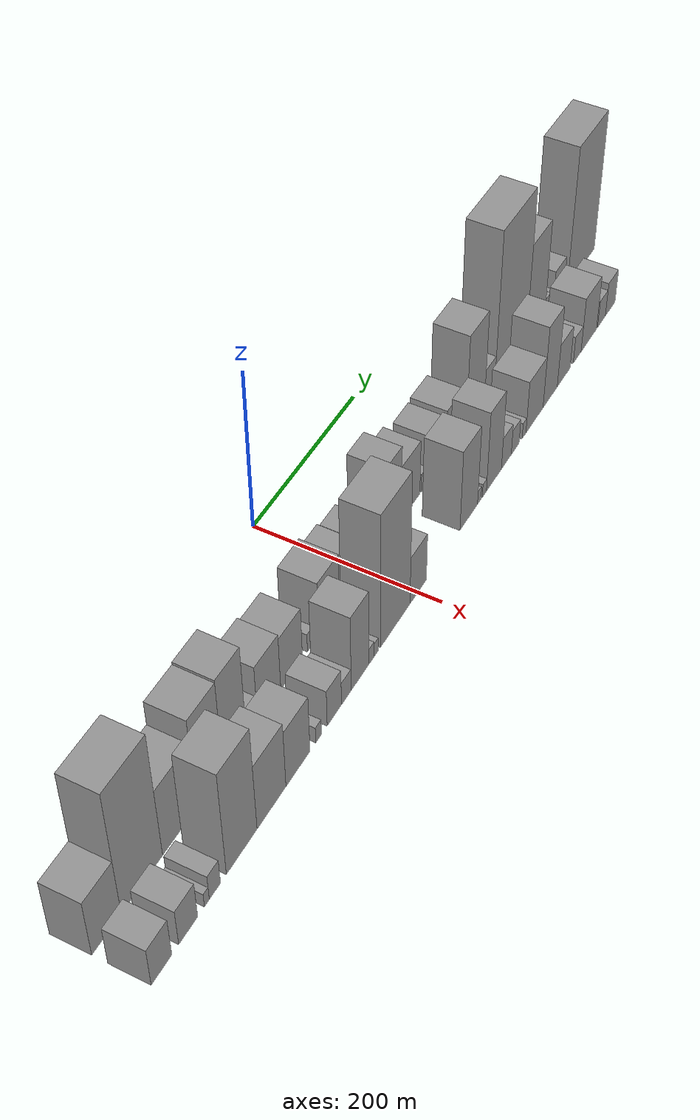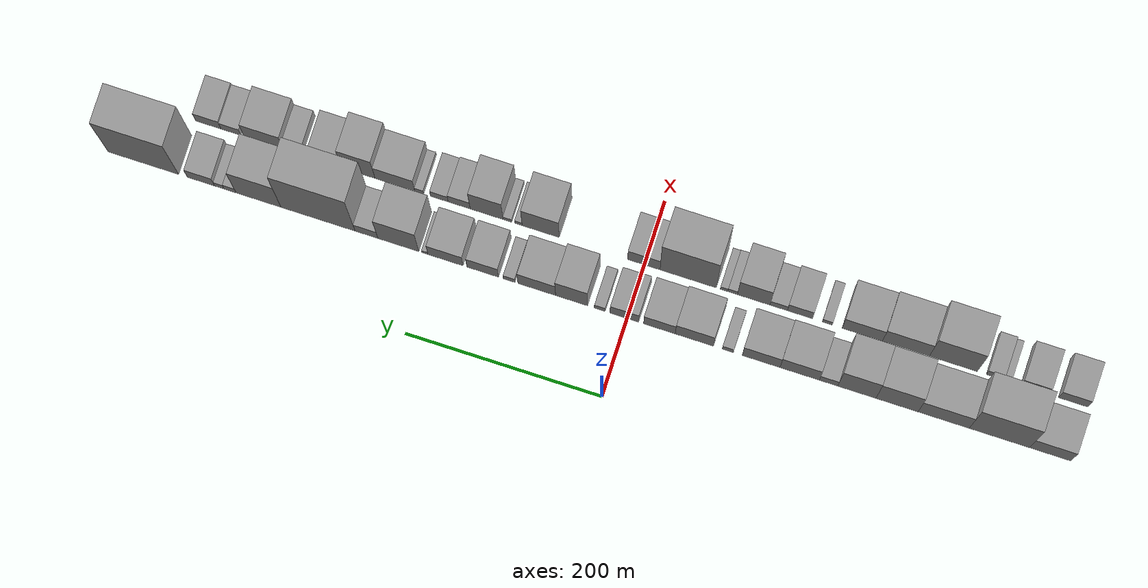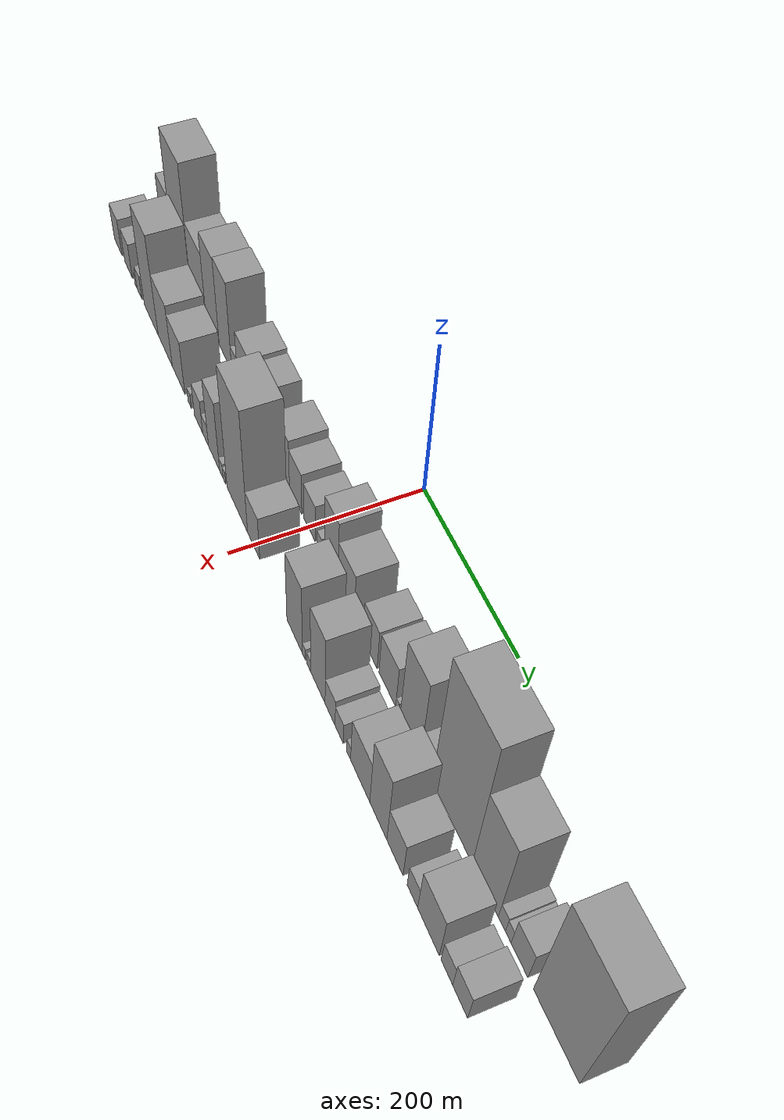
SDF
<sdf version="1.6">
 <world name="default">
  <scene>
   <sky><clouds><speed>12</speed></clouds></sky>
   <ambient>0.4 0.4 0.4 1</ambient>
   <background>0.7 0.7 0.7 1</background>
   <shadows>1</shadows>
  </scene>
  <gravity>0 0 -9.8066</gravity>
  <magnetic_field>6e-06 2.3e-05 -4.2e-05</magnetic_field>
  <physics default="0" name="default_physics" type="ode">
   <ode>
    <solver>
     <type>quick</type>
     <iters>10</iters>
     <sor>1.0</sor>
     <use_dynamic_moi_rescaling>0</use_dynamic_moi_rescaling>
    </solver>
    <constraints>
     <cfm>0</cfm>
     <erp>0.2</erp>
     <contact_max_correcting_vel>100</contact_max_correcting_vel>
     <contact_surface_layer>0.001</contact_surface_layer>
    </constraints>
   </ode>
   <max_step_size>0.004</max_step_size>
   <real_time_factor>1</real_time_factor>
   <real_time_update_rate>250</real_time_update_rate>
  </physics>
  <light name="sun" type="directional">
   <pose>0 0 10 0 0 0</pose>
   <diffuse>0.8 0.8 0.8 1</diffuse>
   <specular>0.2 0.2 0.2 1</specular>
   <attenuation>
    <range>1000</range>
    <constant>0.9</constant>
    <linear>0.01</linear>
    <quadratic>0.001</quadratic>
   </attenuation>
   <direction>-0.5 0.1 -0.9</direction>
  </light>
  <model name="building_1">
   <static>1</static>
   <pose>100.0000 -429.1775 0 0.000000 0.000000 0.000000</pose>
   <link name="link">
    <pose>0 0 37.50 0 0 0</pose>
    <collision name="collision"><geometry><box><size>40.0000 41.6450 75.0000</size></box></geometry></collision>
    <visual name="visual">
     <cast_shadows>0</cast_shadows>
     <geometry><box><size>40.0000 41.6450 75.0000</size></box></geometry>
     <material>
      <script>
       <uri>model://grey_wall/materials/scripts</uri>
       <uri>model://grey_wall/materials/textures</uri>
       <name>vrc/grey_wall</name>
      </script>
     </material>
    </visual>
   </link>
  </model>
  <model name="building_2">
   <static>1</static>
   <pose>100.0000 -377.7919 0 0.000000 0.000000 0.000000</pose>
   <link name="link">
    <pose>0 0 82.50 0 0 0</pose>
    <collision name="collision"><geometry><box><size>40.0000 61.1263 165.0000</size></box></geometry></collision>
    <visual name="visual">
     <cast_shadows>0</cast_shadows>
     <geometry><box><size>40.0000 61.1263 165.0000</size></box></geometry>
     <material>
      <script>
       <uri>model://grey_wall/materials/scripts</uri>
       <uri>model://grey_wall/materials/textures</uri>
       <name>vrc/grey_wall</name>
      </script>
     </material>
    </visual>
   </link>
  </model>
  <model name="building_3">
   <static>1</static>
   <pose>100.0000 -321.2377 0 0.000000 0.000000 0.000000</pose>
   <link name="link">
    <pose>0 0 45.00 0 0 0</pose>
    <collision name="collision"><geometry><box><size>40.0000 51.9820 90.0000</size></box></geometry></collision>
    <visual name="visual">
     <cast_shadows>0</cast_shadows>
     <geometry><box><size>40.0000 51.9820 90.0000</size></box></geometry>
     <material>
      <script>
       <uri>model://grey_wall/materials/scripts</uri>
       <uri>model://grey_wall/materials/textures</uri>
       <name>vrc/grey_wall</name>
      </script>
     </material>
    </visual>
   </link>
  </model>
  <model name="building_4">
   <static>1</static>
   <pose>100.0000 -273.9219 0 0.000000 0.000000 0.000000</pose>
   <link name="link">
    <pose>0 0 60.00 0 0 0</pose>
    <collision name="collision"><geometry><box><size>40.0000 42.6497 120.0000</size></box></geometry></collision>
    <visual name="visual">
     <cast_shadows>0</cast_shadows>
     <geometry><box><size>40.0000 42.6497 120.0000</size></box></geometry>
     <material>
      <script>
       <uri>model://grey_wall/materials/scripts</uri>
       <uri>model://grey_wall/materials/textures</uri>
       <name>vrc/grey_wall</name>
      </script>
     </material>
    </visual>
   </link>
  </model>
  <model name="building_5">
   <static>1</static>
   <pose>100.0000 -233.2874 0 0.000000 0.000000 0.000000</pose>
   <link name="link">
    <pose>0 0 61.50 0 0 0</pose>
    <collision name="collision"><geometry><box><size>40.0000 38.6192 123.0000</size></box></geometry></collision>
    <visual name="visual">
     <cast_shadows>0</cast_shadows>
     <geometry><box><size>40.0000 38.6192 123.0000</size></box></geometry>
     <material>
      <script>
       <uri>model://grey_wall/materials/scripts</uri>
       <uri>model://grey_wall/materials/textures</uri>
       <name>vrc/grey_wall</name>
      </script>
     </material>
    </visual>
   </link>
  </model>
  <model name="building_6">
   <static>1</static>
   <pose>100.0000 -204.5902 0 0.000000 0.000000 0.000000</pose>
   <link name="link">
    <pose>0 0 18.00 0 0 0</pose>
    <collision name="collision"><geometry><box><size>40.0000 18.7752 36.0000</size></box></geometry></collision>
    <visual name="visual">
     <cast_shadows>0</cast_shadows>
     <geometry><box><size>40.0000 18.7752 36.0000</size></box></geometry>
     <material>
      <script>
       <uri>model://grey_wall/materials/scripts</uri>
       <uri>model://grey_wall/materials/textures</uri>
       <name>vrc/grey_wall</name>
      </script>
     </material>
    </visual>
   </link>
  </model>
  <model name="building_7">
   <static>1</static>
   <pose>100.0000 -175.2416 0 0.000000 0.000000 0.000000</pose>
   <link name="link">
    <pose>0 0 37.50 0 0 0</pose>
    <collision name="collision"><geometry><box><size>40.0000 39.9220 75.0000</size></box></geometry></collision>
    <visual name="visual">
     <cast_shadows>0</cast_shadows>
     <geometry><box><size>40.0000 39.9220 75.0000</size></box></geometry>
     <material>
      <script>
       <uri>model://grey_wall/materials/scripts</uri>
       <uri>model://grey_wall/materials/textures</uri>
       <name>vrc/grey_wall</name>
      </script>
     </material>
    </visual>
   </link>
  </model>
  <model name="building_8">
   <static>1</static>
   <pose>100.0000 -136.1130 0 0.000000 0.000000 0.000000</pose>
   <link name="link">
    <pose>0 0 34.50 0 0 0</pose>
    <collision name="collision"><geometry><box><size>40.0000 38.3351 69.0000</size></box></geometry></collision>
    <visual name="visual">
     <cast_shadows>0</cast_shadows>
     <geometry><box><size>40.0000 38.3351 69.0000</size></box></geometry>
     <material>
      <script>
       <uri>model://grey_wall/materials/scripts</uri>
       <uri>model://grey_wall/materials/textures</uri>
       <name>vrc/grey_wall</name>
      </script>
     </material>
    </visual>
   </link>
  </model>
  <model name="building_9">
   <static>1</static>
   <pose>100.0000 -102.2972 0 0.000000 0.000000 0.000000</pose>
   <link name="link">
    <pose>0 0 12.00 0 0 0</pose>
    <collision name="collision"><geometry><box><size>40.0000 11.2966 24.0000</size></box></geometry></collision>
    <visual name="visual">
     <cast_shadows>0</cast_shadows>
     <geometry><box><size>40.0000 11.2966 24.0000</size></box></geometry>
     <material>
      <script>
       <uri>model://grey_wall/materials/scripts</uri>
       <uri>model://grey_wall/materials/textures</uri>
       <name>vrc/grey_wall</name>
      </script>
     </material>
    </visual>
   </link>
  </model>
  <model name="building_10">
   <static>1</static>
   <pose>100.0000 -68.2635 0 0.000000 0.000000 0.000000</pose>
   <link name="link">
    <pose>0 0 36.00 0 0 0</pose>
    <collision name="collision"><geometry><box><size>40.0000 38.7707 72.0000</size></box></geometry></collision>
    <visual name="visual">
     <cast_shadows>0</cast_shadows>
     <geometry><box><size>40.0000 38.7707 72.0000</size></box></geometry>
     <material>
      <script>
       <uri>model://grey_wall/materials/scripts</uri>
       <uri>model://grey_wall/materials/textures</uri>
       <name>vrc/grey_wall</name>
      </script>
     </material>
    </visual>
   </link>
  </model>
  <model name="building_11">
   <static>1</static>
   <pose>100.0000 -32.7618 0 0.000000 0.000000 0.000000</pose>
   <link name="link">
    <pose>0 0 30.00 0 0 0</pose>
    <collision name="collision"><geometry><box><size>40.0000 32.2326 60.0000</size></box></geometry></collision>
    <visual name="visual">
     <cast_shadows>0</cast_shadows>
     <geometry><box><size>40.0000 32.2326 60.0000</size></box></geometry>
     <material>
      <script>
       <uri>model://grey_wall/materials/scripts</uri>
       <uri>model://grey_wall/materials/textures</uri>
       <name>vrc/grey_wall</name>
      </script>
     </material>
    </visual>
   </link>
  </model>
  <model name="building_12">
   <static>1</static>
   <pose>100.0000 2.8910 0 0.000000 0.000000 0.000000</pose>
   <link name="link">
    <pose>0 0 27.00 0 0 0</pose>
    <collision name="collision"><geometry><box><size>40.0000 29.0729 54.0000</size></box></geometry></collision>
    <visual name="visual">
     <cast_shadows>0</cast_shadows>
     <geometry><box><size>40.0000 29.0729 54.0000</size></box></geometry>
     <material>
      <script>
       <uri>model://grey_wall/materials/scripts</uri>
       <uri>model://grey_wall/materials/textures</uri>
       <name>vrc/grey_wall</name>
      </script>
     </material>
    </visual>
   </link>
  </model>
  <model name="building_13">
   <static>1</static>
   <pose>100.0000 27.9162 0 0.000000 0.000000 0.000000</pose>
   <link name="link">
    <pose>0 0 12.00 0 0 0</pose>
    <collision name="collision"><geometry><box><size>40.0000 10.9775 24.0000</size></box></geometry></collision>
    <visual name="visual">
     <cast_shadows>0</cast_shadows>
     <geometry><box><size>40.0000 10.9775 24.0000</size></box></geometry>
     <material>
      <script>
       <uri>model://grey_wall/materials/scripts</uri>
       <uri>model://grey_wall/materials/textures</uri>
       <name>vrc/grey_wall</name>
      </script>
     </material>
    </visual>
   </link>
  </model>
  <model name="building_14">
   <static>1</static>
   <pose>100.0000 56.6942 0 0.000000 0.000000 0.000000</pose>
   <link name="link">
    <pose>0 0 49.50 0 0 0</pose>
    <collision name="collision"><geometry><box><size>40.0000 32.5785 99.0000</size></box></geometry></collision>
    <visual name="visual">
     <cast_shadows>0</cast_shadows>
     <geometry><box><size>40.0000 32.5785 99.0000</size></box></geometry>
     <material>
      <script>
       <uri>model://grey_wall/materials/scripts</uri>
       <uri>model://grey_wall/materials/textures</uri>
       <name>vrc/grey_wall</name>
      </script>
     </material>
    </visual>
   </link>
  </model>
  <model name="building_15">
   <static>1</static>
   <pose>100.0000 92.1852 0 0.000000 0.000000 0.000000</pose>
   <link name="link">
    <pose>0 0 36.00 0 0 0</pose>
    <collision name="collision"><geometry><box><size>40.0000 38.4035 72.0000</size></box></geometry></collision>
    <visual name="visual">
     <cast_shadows>0</cast_shadows>
     <geometry><box><size>40.0000 38.4035 72.0000</size></box></geometry>
     <material>
      <script>
       <uri>model://grey_wall/materials/scripts</uri>
       <uri>model://grey_wall/materials/textures</uri>
       <name>vrc/grey_wall</name>
      </script>
     </material>
    </visual>
   </link>
  </model>
  <model name="building_16">
   <static>1</static>
   <pose>100.0000 120.2889 0 0.000000 0.000000 0.000000</pose>
   <link name="link">
    <pose>0 0 12.00 0 0 0</pose>
    <collision name="collision"><geometry><box><size>40.0000 11.8039 24.0000</size></box></geometry></collision>
    <visual name="visual">
     <cast_shadows>0</cast_shadows>
     <geometry><box><size>40.0000 11.8039 24.0000</size></box></geometry>
     <material>
      <script>
       <uri>model://grey_wall/materials/scripts</uri>
       <uri>model://grey_wall/materials/textures</uri>
       <name>vrc/grey_wall</name>
      </script>
     </material>
    </visual>
   </link>
  </model>
  <model name="building_17">
   <static>1</static>
   <pose>100.0000 147.2270 0 0.000000 0.000000 0.000000</pose>
   <link name="link">
    <pose>0 0 30.00 0 0 0</pose>
    <collision name="collision"><geometry><box><size>40.0000 32.0724 60.0000</size></box></geometry></collision>
    <visual name="visual">
     <cast_shadows>0</cast_shadows>
     <geometry><box><size>40.0000 32.0724 60.0000</size></box></geometry>
     <material>
      <script>
       <uri>model://grey_wall/materials/scripts</uri>
       <uri>model://grey_wall/materials/textures</uri>
       <name>vrc/grey_wall</name>
      </script>
     </material>
    </visual>
   </link>
  </model>
  <model name="building_18">
   <static>1</static>
   <pose>100.0000 185.1688 0 0.000000 0.000000 0.000000</pose>
   <link name="link">
    <pose>0 0 31.50 0 0 0</pose>
    <collision name="collision"><geometry><box><size>40.0000 35.8112 63.0000</size></box></geometry></collision>
    <visual name="visual">
     <cast_shadows>0</cast_shadows>
     <geometry><box><size>40.0000 35.8112 63.0000</size></box></geometry>
     <material>
      <script>
       <uri>model://grey_wall/materials/scripts</uri>
       <uri>model://grey_wall/materials/textures</uri>
       <name>vrc/grey_wall</name>
      </script>
     </material>
    </visual>
   </link>
  </model>
  <model name="building_19">
   <static>1</static>
   <pose>100.0000 206.2844 0 0.000000 0.000000 0.000000</pose>
   <link name="link">
    <pose>0 0 7.50 0 0 0</pose>
    <collision name="collision"><geometry><box><size>40.0000 6.4200 15.0000</size></box></geometry></collision>
    <visual name="visual">
     <cast_shadows>0</cast_shadows>
     <geometry><box><size>40.0000 6.4200 15.0000</size></box></geometry>
     <material>
      <script>
       <uri>model://grey_wall/materials/scripts</uri>
       <uri>model://grey_wall/materials/textures</uri>
       <name>vrc/grey_wall</name>
      </script>
     </material>
    </visual>
   </link>
  </model>
  <model name="building_20">
   <static>1</static>
   <pose>100.0000 233.3649 0 0.000000 0.000000 0.000000</pose>
   <link name="link">
    <pose>0 0 61.50 0 0 0</pose>
    <collision name="collision"><geometry><box><size>40.0000 41.7410 123.0000</size></box></geometry></collision>
    <visual name="visual">
     <cast_shadows>0</cast_shadows>
     <geometry><box><size>40.0000 41.7410 123.0000</size></box></geometry>
     <material>
      <script>
       <uri>model://grey_wall/materials/scripts</uri>
       <uri>model://grey_wall/materials/textures</uri>
       <name>vrc/grey_wall</name>
      </script>
     </material>
    </visual>
   </link>
  </model>
  <model name="building_21">
   <static>1</static>
   <pose>100.0000 265.9006 0 0.000000 0.000000 0.000000</pose>
   <link name="link">
    <pose>0 0 22.50 0 0 0</pose>
    <collision name="collision"><geometry><box><size>40.0000 23.3303 45.0000</size></box></geometry></collision>
    <visual name="visual">
     <cast_shadows>0</cast_shadows>
     <geometry><box><size>40.0000 23.3303 45.0000</size></box></geometry>
     <material>
      <script>
       <uri>model://grey_wall/materials/scripts</uri>
       <uri>model://grey_wall/materials/textures</uri>
       <name>vrc/grey_wall</name>
      </script>
     </material>
    </visual>
   </link>
  </model>
  <model name="building_22">
   <static>1</static>
   <pose>100.0000 315.4582 0 0.000000 0.000000 0.000000</pose>
   <link name="link">
    <pose>0 0 102.00 0 0 0</pose>
    <collision name="collision"><geometry><box><size>40.0000 75.7849 204.0000</size></box></geometry></collision>
    <visual name="visual">
     <cast_shadows>0</cast_shadows>
     <geometry><box><size>40.0000 75.7849 204.0000</size></box></geometry>
     <material>
      <script>
       <uri>model://grey_wall/materials/scripts</uri>
       <uri>model://grey_wall/materials/textures</uri>
       <name>vrc/grey_wall</name>
      </script>
     </material>
    </visual>
   </link>
  </model>
  <model name="building_23">
   <static>1</static>
   <pose>100.0000 376.3671 0 0.000000 0.000000 0.000000</pose>
   <link name="link">
    <pose>0 0 66.00 0 0 0</pose>
    <collision name="collision"><geometry><box><size>40.0000 46.0330 132.0000</size></box></geometry></collision>
    <visual name="visual">
     <cast_shadows>0</cast_shadows>
     <geometry><box><size>40.0000 46.0330 132.0000</size></box></geometry>
     <material>
      <script>
       <uri>model://grey_wall/materials/scripts</uri>
       <uri>model://grey_wall/materials/textures</uri>
       <name>vrc/grey_wall</name>
      </script>
     </material>
    </visual>
   </link>
  </model>
  <model name="building_24">
   <static>1</static>
   <pose>100.0000 405.5553 0 0.000000 0.000000 0.000000</pose>
   <link name="link">
    <pose>0 0 13.50 0 0 0</pose>
    <collision name="collision"><geometry><box><size>40.0000 12.3434 27.0000</size></box></geometry></collision>
    <visual name="visual">
     <cast_shadows>0</cast_shadows>
     <geometry><box><size>40.0000 12.3434 27.0000</size></box></geometry>
     <material>
      <script>
       <uri>model://grey_wall/materials/scripts</uri>
       <uri>model://grey_wall/materials/textures</uri>
       <name>vrc/grey_wall</name>
      </script>
     </material>
    </visual>
   </link>
  </model>
  <model name="building_25">
   <static>1</static>
   <pose>100.0000 416.5286 0 0.000000 0.000000 0.000000</pose>
   <link name="link">
    <pose>0 0 12.00 0 0 0</pose>
    <collision name="collision"><geometry><box><size>40.0000 9.6032 24.0000</size></box></geometry></collision>
    <visual name="visual">
     <cast_shadows>0</cast_shadows>
     <geometry><box><size>40.0000 9.6032 24.0000</size></box></geometry>
     <material>
      <script>
       <uri>model://grey_wall/materials/scripts</uri>
       <uri>model://grey_wall/materials/textures</uri>
       <name>vrc/grey_wall</name>
      </script>
     </material>
    </visual>
   </link>
  </model>
  <model name="building_26">
   <static>1</static>
   <pose>100.0000 435.3020 0 0.000000 0.000000 0.000000</pose>
   <link name="link">
    <pose>0 0 24.00 0 0 0</pose>
    <collision name="collision"><geometry><box><size>40.0000 27.9434 48.0000</size></box></geometry></collision>
    <visual name="visual">
     <cast_shadows>0</cast_shadows>
     <geometry><box><size>40.0000 27.9434 48.0000</size></box></geometry>
     <material>
      <script>
       <uri>model://grey_wall/materials/scripts</uri>
       <uri>model://grey_wall/materials/textures</uri>
       <name>vrc/grey_wall</name>
      </script>
     </material>
    </visual>
   </link>
  </model>
  <model name="building_27">
   <static>1</static>
   <pose>100.0000 494.3336 0 0.000000 0.000000 0.000000</pose>
   <link name="link">
    <pose>0 0 91.50 0 0 0</pose>
    <collision name="collision"><geometry><box><size>40.0000 72.1199 183.0000</size></box></geometry></collision>
    <visual name="visual">
     <cast_shadows>0</cast_shadows>
     <geometry><box><size>40.0000 72.1199 183.0000</size></box></geometry>
     <material>
      <script>
       <uri>model://grey_wall/materials/scripts</uri>
       <uri>model://grey_wall/materials/textures</uri>
       <name>vrc/grey_wall</name>
      </script>
     </material>
    </visual>
   </link>
  </model>
  <model name="building_28">
   <static>1</static>
   <pose>155.0000 -435.1571 0 0.000000 0.000000 0.000000</pose>
   <link name="link">
    <pose>0 0 25.50 0 0 0</pose>
    <collision name="collision"><geometry><box><size>40.0000 29.6859 51.0000</size></box></geometry></collision>
    <visual name="visual">
     <cast_shadows>0</cast_shadows>
     <geometry><box><size>40.0000 29.6859 51.0000</size></box></geometry>
     <material>
      <script>
       <uri>model://grey_wall/materials/scripts</uri>
       <uri>model://grey_wall/materials/textures</uri>
       <name>vrc/grey_wall</name>
      </script>
     </material>
    </visual>
   </link>
  </model>
  <model name="building_29">
   <static>1</static>
   <pose>155.0000 -396.1464 0 0.000000 0.000000 0.000000</pose>
   <link name="link">
    <pose>0 0 24.00 0 0 0</pose>
    <collision name="collision"><geometry><box><size>40.0000 28.3355 48.0000</size></box></geometry></collision>
    <visual name="visual">
     <cast_shadows>0</cast_shadows>
     <geometry><box><size>40.0000 28.3355 48.0000</size></box></geometry>
     <material>
      <script>
       <uri>model://grey_wall/materials/scripts</uri>
       <uri>model://grey_wall/materials/textures</uri>
       <name>vrc/grey_wall</name>
      </script>
     </material>
    </visual>
   </link>
  </model>
  <model name="building_30">
   <static>1</static>
   <pose>155.0000 -368.2110 0 0.000000 0.000000 0.000000</pose>
   <link name="link">
    <pose>0 0 9.00 0 0 0</pose>
    <collision name="collision"><geometry><box><size>40.0000 7.5354 18.0000</size></box></geometry></collision>
    <visual name="visual">
     <cast_shadows>0</cast_shadows>
     <geometry><box><size>40.0000 7.5354 18.0000</size></box></geometry>
     <material>
      <script>
       <uri>model://grey_wall/materials/scripts</uri>
       <uri>model://grey_wall/materials/textures</uri>
       <name>vrc/grey_wall</name>
      </script>
     </material>
    </visual>
   </link>
  </model>
  <model name="building_31">
   <static>1</static>
   <pose>155.0000 -355.8351 0 0.000000 0.000000 0.000000</pose>
   <link name="link">
    <pose>0 0 16.50 0 0 0</pose>
    <collision name="collision"><geometry><box><size>40.0000 17.2164 33.0000</size></box></geometry></collision>
    <visual name="visual">
     <cast_shadows>0</cast_shadows>
     <geometry><box><size>40.0000 17.2164 33.0000</size></box></geometry>
     <material>
      <script>
       <uri>model://grey_wall/materials/scripts</uri>
       <uri>model://grey_wall/materials/textures</uri>
       <name>vrc/grey_wall</name>
      </script>
     </material>
    </visual>
   </link>
  </model>
  <model name="building_32">
   <static>1</static>
   <pose>155.0000 -313.8597 0 0.000000 0.000000 0.000000</pose>
   <link name="link">
    <pose>0 0 69.00 0 0 0</pose>
    <collision name="collision"><geometry><box><size>40.0000 48.7344 138.0000</size></box></geometry></collision>
    <visual name="visual">
     <cast_shadows>0</cast_shadows>
     <geometry><box><size>40.0000 48.7344 138.0000</size></box></geometry>
     <material>
      <script>
       <uri>model://grey_wall/materials/scripts</uri>
       <uri>model://grey_wall/materials/textures</uri>
       <name>vrc/grey_wall</name>
      </script>
     </material>
    </visual>
   </link>
  </model>
  <model name="building_33">
   <static>1</static>
   <pose>155.0000 -265.6903 0 0.000000 0.000000 0.000000</pose>
   <link name="link">
    <pose>0 0 43.50 0 0 0</pose>
    <collision name="collision"><geometry><box><size>40.0000 47.6045 87.0000</size></box></geometry></collision>
    <visual name="visual">
     <cast_shadows>0</cast_shadows>
     <geometry><box><size>40.0000 47.6045 87.0000</size></box></geometry>
     <material>
      <script>
       <uri>model://grey_wall/materials/scripts</uri>
       <uri>model://grey_wall/materials/textures</uri>
       <name>vrc/grey_wall</name>
      </script>
     </material>
    </visual>
   </link>
  </model>
  <model name="building_34">
   <static>1</static>
   <pose>155.0000 -221.3886 0 0.000000 0.000000 0.000000</pose>
   <link name="link">
    <pose>0 0 37.50 0 0 0</pose>
    <collision name="collision"><geometry><box><size>40.0000 40.9990 75.0000</size></box></geometry></collision>
    <visual name="visual">
     <cast_shadows>0</cast_shadows>
     <geometry><box><size>40.0000 40.9990 75.0000</size></box></geometry>
     <material>
      <script>
       <uri>model://grey_wall/materials/scripts</uri>
       <uri>model://grey_wall/materials/textures</uri>
       <name>vrc/grey_wall</name>
      </script>
     </material>
    </visual>
   </link>
  </model>
  <model name="building_35">
   <static>1</static>
   <pose>155.0000 -185.8597 0 0.000000 0.000000 0.000000</pose>
   <link name="link">
    <pose>0 0 10.50 0 0 0</pose>
    <collision name="collision"><geometry><box><size>40.0000 10.0588 21.0000</size></box></geometry></collision>
    <visual name="visual">
     <cast_shadows>0</cast_shadows>
     <geometry><box><size>40.0000 10.0588 21.0000</size></box></geometry>
     <material>
      <script>
       <uri>model://grey_wall/materials/scripts</uri>
       <uri>model://grey_wall/materials/textures</uri>
       <name>vrc/grey_wall</name>
      </script>
     </material>
    </visual>
   </link>
  </model>
  <model name="building_36">
   <static>1</static>
   <pose>155.0000 -158.0476 0 0.000000 0.000000 0.000000</pose>
   <link name="link">
    <pose>0 0 24.00 0 0 0</pose>
    <collision name="collision"><geometry><box><size>40.0000 25.5654 48.0000</size></box></geometry></collision>
    <visual name="visual">
     <cast_shadows>0</cast_shadows>
     <geometry><box><size>40.0000 25.5654 48.0000</size></box></geometry>
     <material>
      <script>
       <uri>model://grey_wall/materials/scripts</uri>
       <uri>model://grey_wall/materials/textures</uri>
       <name>vrc/grey_wall</name>
      </script>
     </material>
    </visual>
   </link>
  </model>
  <model name="building_37">
   <static>1</static>
   <pose>155.0000 -136.4283 0 0.000000 0.000000 0.000000</pose>
   <link name="link">
    <pose>0 0 15.00 0 0 0</pose>
    <collision name="collision"><geometry><box><size>40.0000 17.6733 30.0000</size></box></geometry></collision>
    <visual name="visual">
     <cast_shadows>0</cast_shadows>
     <geometry><box><size>40.0000 17.6733 30.0000</size></box></geometry>
     <material>
      <script>
       <uri>model://grey_wall/materials/scripts</uri>
       <uri>model://grey_wall/materials/textures</uri>
       <name>vrc/grey_wall</name>
      </script>
     </material>
    </visual>
   </link>
  </model>
  <model name="building_38">
   <static>1</static>
   <pose>155.0000 -111.0777 0 0.000000 0.000000 0.000000</pose>
   <link name="link">
    <pose>0 0 49.50 0 0 0</pose>
    <collision name="collision"><geometry><box><size>40.0000 33.0277 99.0000</size></box></geometry></collision>
    <visual name="visual">
     <cast_shadows>0</cast_shadows>
     <geometry><box><size>40.0000 33.0277 99.0000</size></box></geometry>
     <material>
      <script>
       <uri>model://grey_wall/materials/scripts</uri>
       <uri>model://grey_wall/materials/textures</uri>
       <name>vrc/grey_wall</name>
      </script>
     </material>
    </visual>
   </link>
  </model>
  <model name="building_39">
   <static>1</static>
   <pose>155.0000 -89.6882 0 0.000000 0.000000 0.000000</pose>
   <link name="link">
    <pose>0 0 10.50 0 0 0</pose>
    <collision name="collision"><geometry><box><size>40.0000 9.7514 21.0000</size></box></geometry></collision>
    <visual name="visual">
     <cast_shadows>0</cast_shadows>
     <geometry><box><size>40.0000 9.7514 21.0000</size></box></geometry>
     <material>
      <script>
       <uri>model://grey_wall/materials/scripts</uri>
       <uri>model://grey_wall/materials/textures</uri>
       <name>vrc/grey_wall</name>
      </script>
     </material>
    </visual>
   </link>
  </model>
  <model name="building_40">
   <static>1</static>
   <pose>155.0000 -80.9170 0 0.000000 0.000000 0.000000</pose>
   <link name="link">
    <pose>0 0 9.00 0 0 0</pose>
    <collision name="collision"><geometry><box><size>40.0000 7.7910 18.0000</size></box></geometry></collision>
    <visual name="visual">
     <cast_shadows>0</cast_shadows>
     <geometry><box><size>40.0000 7.7910 18.0000</size></box></geometry>
     <material>
      <script>
       <uri>model://grey_wall/materials/scripts</uri>
       <uri>model://grey_wall/materials/textures</uri>
       <name>vrc/grey_wall</name>
      </script>
     </material>
    </visual>
   </link>
  </model>
  <model name="building_41">
   <static>1</static>
   <pose>155.0000 -44.3341 0 0.000000 0.000000 0.000000</pose>
   <link name="link">
    <pose>0 0 87.00 0 0 0</pose>
    <collision name="collision"><geometry><box><size>40.0000 57.3748 174.0000</size></box></geometry></collision>
    <visual name="visual">
     <cast_shadows>0</cast_shadows>
     <geometry><box><size>40.0000 57.3748 174.0000</size></box></geometry>
     <material>
      <script>
       <uri>model://grey_wall/materials/scripts</uri>
       <uri>model://grey_wall/materials/textures</uri>
       <name>vrc/grey_wall</name>
      </script>
     </material>
    </visual>
   </link>
  </model>
  <model name="building_42">
   <static>1</static>
   <pose>155.0000 0.7902 0 0.000000 0.000000 0.000000</pose>
   <link name="link">
    <pose>0 0 31.50 0 0 0</pose>
    <collision name="collision"><geometry><box><size>40.0000 32.8739 63.0000</size></box></geometry></collision>
    <visual name="visual">
     <cast_shadows>0</cast_shadows>
     <geometry><box><size>40.0000 32.8739 63.0000</size></box></geometry>
     <material>
      <script>
       <uri>model://grey_wall/materials/scripts</uri>
       <uri>model://grey_wall/materials/textures</uri>
       <name>vrc/grey_wall</name>
      </script>
     </material>
    </visual>
   </link>
  </model>
  <model name="building_43">
   <static>1</static>
   <pose>155.0000 106.0111 0 0.000000 0.000000 0.000000</pose>
   <link name="link">
    <pose>0 0 52.50 0 0 0</pose>
    <collision name="collision"><geometry><box><size>40.0000 37.8560 105.0000</size></box></geometry></collision>
    <visual name="visual">
     <cast_shadows>0</cast_shadows>
     <geometry><box><size>40.0000 37.8560 105.0000</size></box></geometry>
     <material>
      <script>
       <uri>model://grey_wall/materials/scripts</uri>
       <uri>model://grey_wall/materials/textures</uri>
       <name>vrc/grey_wall</name>
      </script>
     </material>
    </visual>
   </link>
  </model>
  <model name="building_44">
   <static>1</static>
   <pose>155.0000 128.7403 0 0.000000 0.000000 0.000000</pose>
   <link name="link">
    <pose>0 0 9.00 0 0 0</pose>
    <collision name="collision"><geometry><box><size>40.0000 7.6025 18.0000</size></box></geometry></collision>
    <visual name="visual">
     <cast_shadows>0</cast_shadows>
     <geometry><box><size>40.0000 7.6025 18.0000</size></box></geometry>
     <material>
      <script>
       <uri>model://grey_wall/materials/scripts</uri>
       <uri>model://grey_wall/materials/textures</uri>
       <name>vrc/grey_wall</name>
      </script>
     </material>
    </visual>
   </link>
  </model>
  <model name="building_45">
   <static>1</static>
   <pose>155.0000 140.0113 0 0.000000 0.000000 0.000000</pose>
   <link name="link">
    <pose>0 0 9.00 0 0 0</pose>
    <collision name="collision"><geometry><box><size>40.0000 8.9395 18.0000</size></box></geometry></collision>
    <visual name="visual">
     <cast_shadows>0</cast_shadows>
     <geometry><box><size>40.0000 8.9395 18.0000</size></box></geometry>
     <material>
      <script>
       <uri>model://grey_wall/materials/scripts</uri>
       <uri>model://grey_wall/materials/textures</uri>
       <name>vrc/grey_wall</name>
      </script>
     </material>
    </visual>
   </link>
  </model>
  <model name="building_46">
   <static>1</static>
   <pose>155.0000 161.2486 0 0.000000 0.000000 0.000000</pose>
   <link name="link">
    <pose>0 0 52.50 0 0 0</pose>
    <collision name="collision"><geometry><box><size>40.0000 33.5350 105.0000</size></box></geometry></collision>
    <visual name="visual">
     <cast_shadows>0</cast_shadows>
     <geometry><box><size>40.0000 33.5350 105.0000</size></box></geometry>
     <material>
      <script>
       <uri>model://grey_wall/materials/scripts</uri>
       <uri>model://grey_wall/materials/textures</uri>
       <name>vrc/grey_wall</name>
      </script>
     </material>
    </visual>
   </link>
  </model>
  <model name="building_47">
   <static>1</static>
   <pose>155.0000 189.2490 0 0.000000 0.000000 0.000000</pose>
   <link name="link">
    <pose>0 0 21.00 0 0 0</pose>
    <collision name="collision"><geometry><box><size>40.0000 22.4658 42.0000</size></box></geometry></collision>
    <visual name="visual">
     <cast_shadows>0</cast_shadows>
     <geometry><box><size>40.0000 22.4658 42.0000</size></box></geometry>
     <material>
      <script>
       <uri>model://grey_wall/materials/scripts</uri>
       <uri>model://grey_wall/materials/textures</uri>
       <name>vrc/grey_wall</name>
      </script>
     </material>
    </visual>
   </link>
  </model>
  <model name="building_48">
   <static>1</static>
   <pose>155.0000 209.5497 0 0.000000 0.000000 0.000000</pose>
   <link name="link">
    <pose>0 0 16.50 0 0 0</pose>
    <collision name="collision"><geometry><box><size>40.0000 18.1357 33.0000</size></box></geometry></collision>
    <visual name="visual">
     <cast_shadows>0</cast_shadows>
     <geometry><box><size>40.0000 18.1357 33.0000</size></box></geometry>
     <material>
      <script>
       <uri>model://grey_wall/materials/scripts</uri>
       <uri>model://grey_wall/materials/textures</uri>
       <name>vrc/grey_wall</name>
      </script>
     </material>
    </visual>
   </link>
  </model>
  <model name="building_49">
   <static>1</static>
   <pose>155.0000 230.1292 0 0.000000 0.000000 0.000000</pose>
   <link name="link">
    <pose>0 0 10.50 0 0 0</pose>
    <collision name="collision"><geometry><box><size>40.0000 9.0232 21.0000</size></box></geometry></collision>
    <visual name="visual">
     <cast_shadows>0</cast_shadows>
     <geometry><box><size>40.0000 9.0232 21.0000</size></box></geometry>
     <material>
      <script>
       <uri>model://grey_wall/materials/scripts</uri>
       <uri>model://grey_wall/materials/textures</uri>
       <name>vrc/grey_wall</name>
      </script>
     </material>
    </visual>
   </link>
  </model>
  <model name="building_50">
   <static>1</static>
   <pose>155.0000 254.9763 0 0.000000 0.000000 0.000000</pose>
   <link name="link">
    <pose>0 0 34.50 0 0 0</pose>
    <collision name="collision"><geometry><box><size>40.0000 40.6709 69.0000</size></box></geometry></collision>
    <visual name="visual">
     <cast_shadows>0</cast_shadows>
     <geometry><box><size>40.0000 40.6709 69.0000</size></box></geometry>
     <material>
      <script>
       <uri>model://grey_wall/materials/scripts</uri>
       <uri>model://grey_wall/materials/textures</uri>
       <name>vrc/grey_wall</name>
      </script>
     </material>
    </visual>
   </link>
  </model>
  <model name="building_51">
   <static>1</static>
   <pose>155.0000 292.6564 0 0.000000 0.000000 0.000000</pose>
   <link name="link">
    <pose>0 0 54.00 0 0 0</pose>
    <collision name="collision"><geometry><box><size>40.0000 34.6892 108.0000</size></box></geometry></collision>
    <visual name="visual">
     <cast_shadows>0</cast_shadows>
     <geometry><box><size>40.0000 34.6892 108.0000</size></box></geometry>
     <material>
      <script>
       <uri>model://grey_wall/materials/scripts</uri>
       <uri>model://grey_wall/materials/textures</uri>
       <name>vrc/grey_wall</name>
      </script>
     </material>
    </visual>
   </link>
  </model>
  <model name="building_52">
   <static>1</static>
   <pose>155.0000 325.9232 0 0.000000 0.000000 0.000000</pose>
   <link name="link">
    <pose>0 0 28.50 0 0 0</pose>
    <collision name="collision"><geometry><box><size>40.0000 31.8444 57.0000</size></box></geometry></collision>
    <visual name="visual">
     <cast_shadows>0</cast_shadows>
     <geometry><box><size>40.0000 31.8444 57.0000</size></box></geometry>
     <material>
      <script>
       <uri>model://grey_wall/materials/scripts</uri>
       <uri>model://grey_wall/materials/textures</uri>
       <name>vrc/grey_wall</name>
      </script>
     </material>
    </visual>
   </link>
  </model>
  <model name="building_53">
   <static>1</static>
   <pose>155.0000 359.7807 0 0.000000 0.000000 0.000000</pose>
   <link name="link">
    <pose>0 0 18.00 0 0 0</pose>
    <collision name="collision"><geometry><box><size>40.0000 19.8705 36.0000</size></box></geometry></collision>
    <visual name="visual">
     <cast_shadows>0</cast_shadows>
     <geometry><box><size>40.0000 19.8705 36.0000</size></box></geometry>
     <material>
      <script>
       <uri>model://grey_wall/materials/scripts</uri>
       <uri>model://grey_wall/materials/textures</uri>
       <name>vrc/grey_wall</name>
      </script>
     </material>
    </visual>
   </link>
  </model>
  <model name="building_54">
   <static>1</static>
   <pose>155.0000 389.6644 0 0.000000 0.000000 0.000000</pose>
   <link name="link">
    <pose>0 0 36.00 0 0 0</pose>
    <collision name="collision"><geometry><box><size>40.0000 39.8970 72.0000</size></box></geometry></collision>
    <visual name="visual">
     <cast_shadows>0</cast_shadows>
     <geometry><box><size>40.0000 39.8970 72.0000</size></box></geometry>
     <material>
      <script>
       <uri>model://grey_wall/materials/scripts</uri>
       <uri>model://grey_wall/materials/textures</uri>
       <name>vrc/grey_wall</name>
      </script>
     </material>
    </visual>
   </link>
  </model>
  <model name="building_55">
   <static>1</static>
   <pose>155.0000 422.9212 0 0.000000 0.000000 0.000000</pose>
   <link name="link">
    <pose>0 0 18.00 0 0 0</pose>
    <collision name="collision"><geometry><box><size>40.0000 20.6167 36.0000</size></box></geometry></collision>
    <visual name="visual">
     <cast_shadows>0</cast_shadows>
     <geometry><box><size>40.0000 20.6167 36.0000</size></box></geometry>
     <material>
      <script>
       <uri>model://grey_wall/materials/scripts</uri>
       <uri>model://grey_wall/materials/textures</uri>
       <name>vrc/grey_wall</name>
      </script>
     </material>
    </visual>
   </link>
  </model>
  <model name="building_56">
   <static>1</static>
   <pose>155.0000 446.1482 0 0.000000 0.000000 0.000000</pose>
   <link name="link">
    <pose>0 0 22.50 0 0 0</pose>
    <collision name="collision"><geometry><box><size>40.0000 25.8373 45.0000</size></box></geometry></collision>
    <visual name="visual">
     <cast_shadows>0</cast_shadows>
     <geometry><box><size>40.0000 25.8373 45.0000</size></box></geometry>
     <material>
      <script>
       <uri>model://grey_wall/materials/scripts</uri>
       <uri>model://grey_wall/materials/textures</uri>
       <name>vrc/grey_wall</name>
      </script>
     </material>
    </visual>
   </link>
  </model>
 </world>
</sdf>
